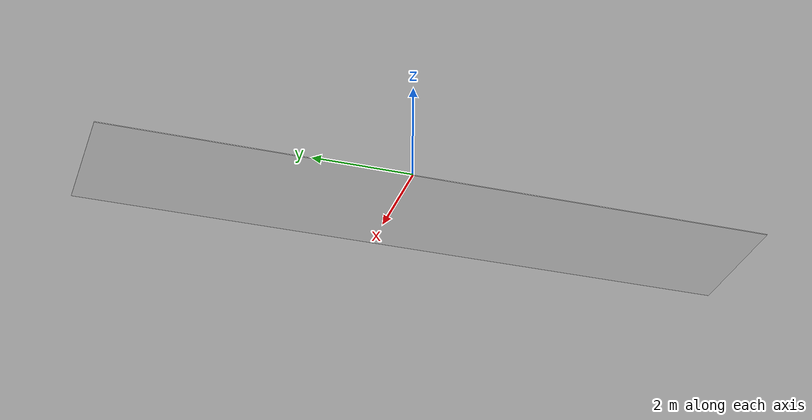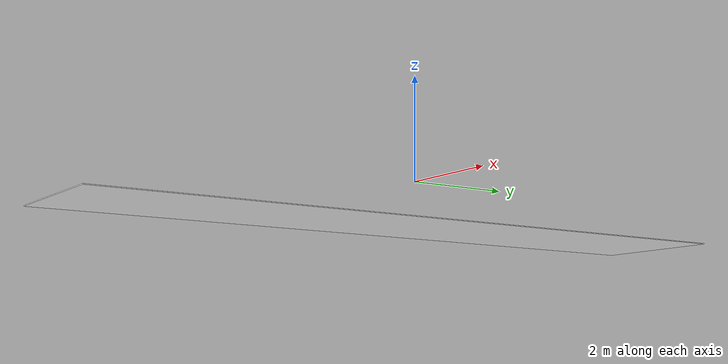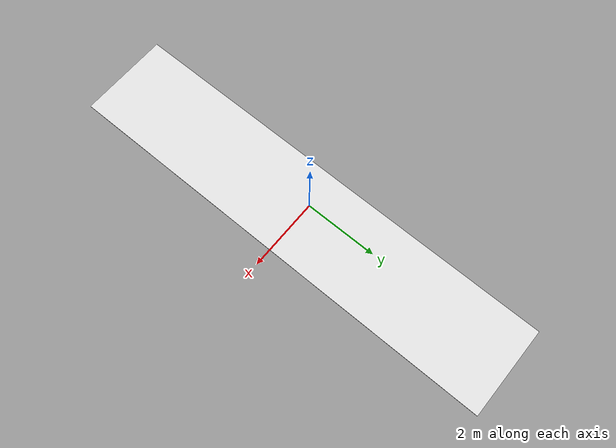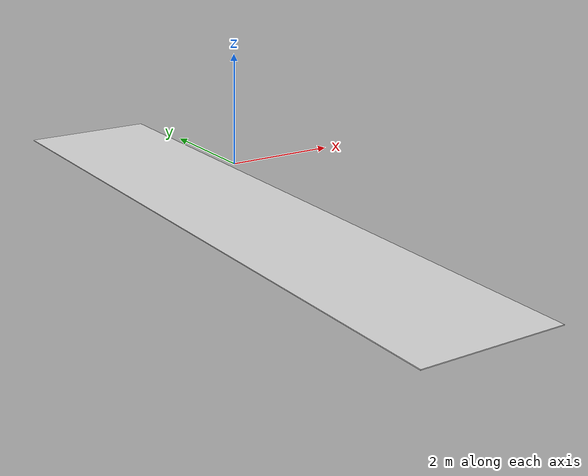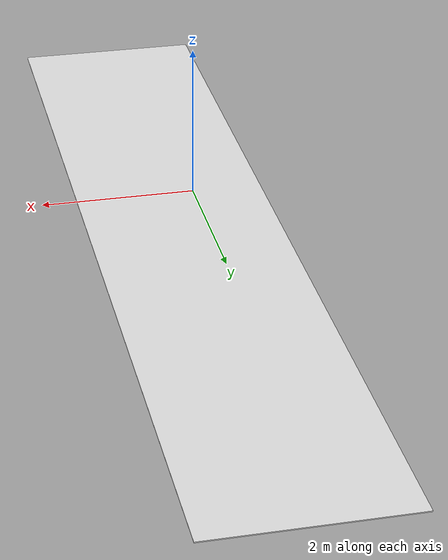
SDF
<?xml version="1.0"?>
<sdf version="1.7">

  <model name="table_top8">
    <link name="table_top8_link">
      <inertial>
        <mass>18.70</mass>
        <inertia>
          <ixx>0.79</ixx>
          <ixy>0</ixy>
          <ixz>0</ixz>
          <iyy>0.53</iyy>
          <iyz>0</iyz>
          <izz>1.2</izz>
        </inertia>
      </inertial>
    <visual name="bottom">
        <pose>0 -0.25 -0.85 0 0 0</pose>
        <geometry>
          <box>
            <size>2.63 12.98 0.015</size>
          </box>
        </geometry>
        <material>
          <diffuse>0.9 0.9 0.9 1.0</diffuse>
        </material>
      </visual>
      <collision name="bottom">
        <pose>0 -0.25 -0.85 0 0 0</pose>
        <geometry>
          <box>
            <size>2.63 12.98 0.015</size>
          </box>
        </geometry>
        <drake:proximity_properties>
          <drake:compliant_hydroelastic/>
          <drake:hydroelastic_modulus>1.0e6</drake:hydroelastic_modulus>
        </drake:proximity_properties>
      </collision>
    </link>
    <frame name="table_top8_center">
      <pose relative_to="table_top8_link">0 0 0.47 0 0 0</pose>
    </frame>
  </model>
</sdf>
